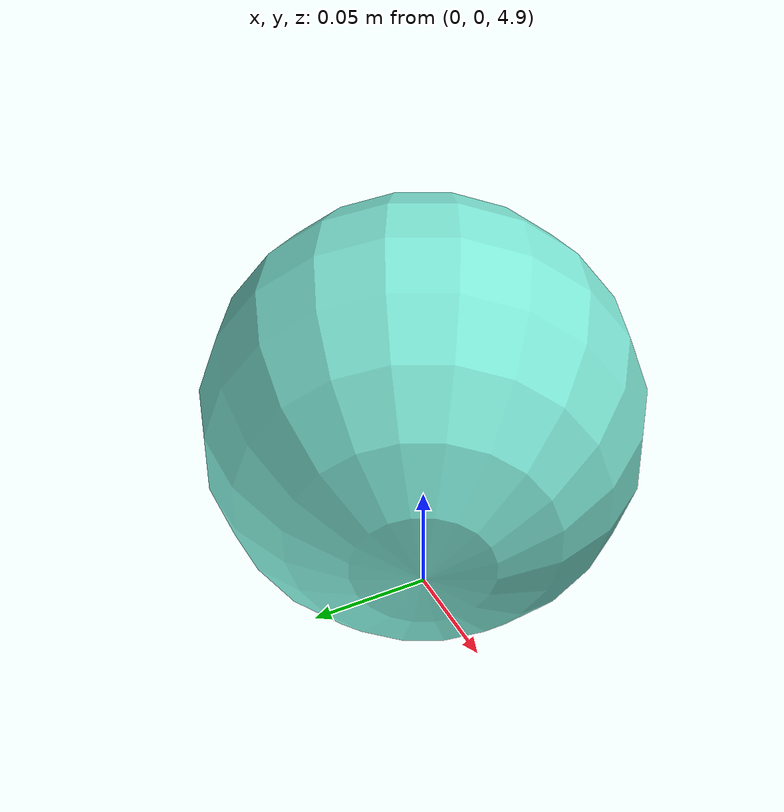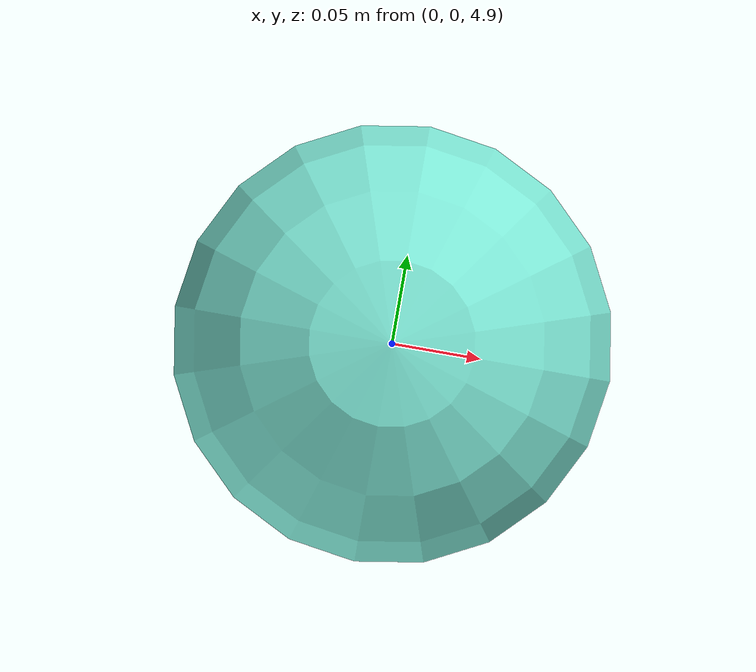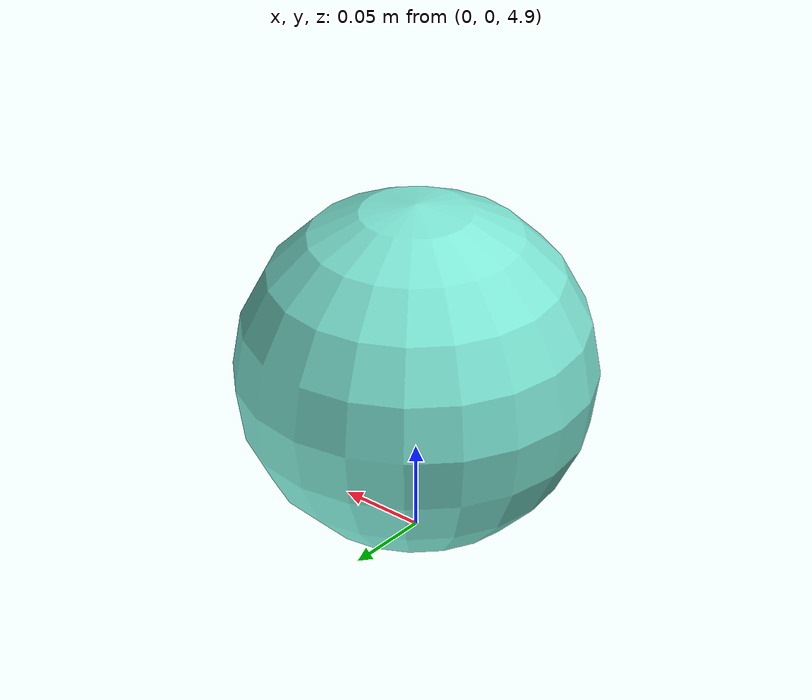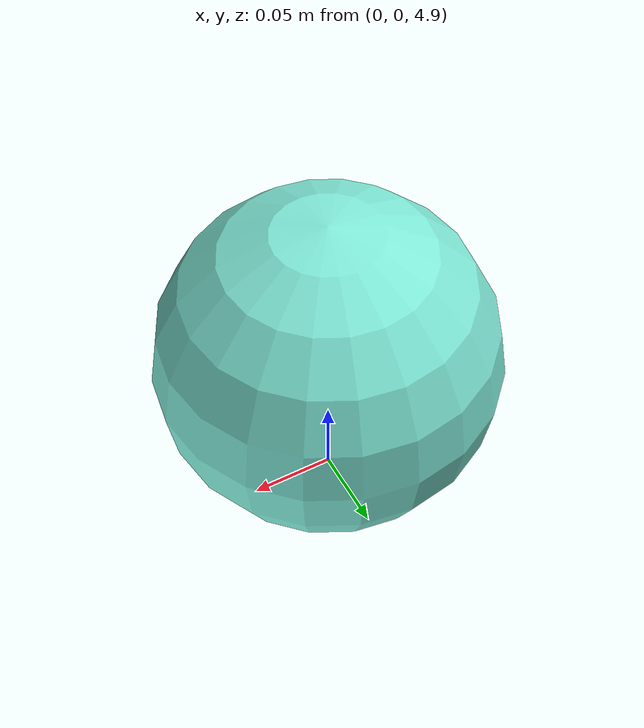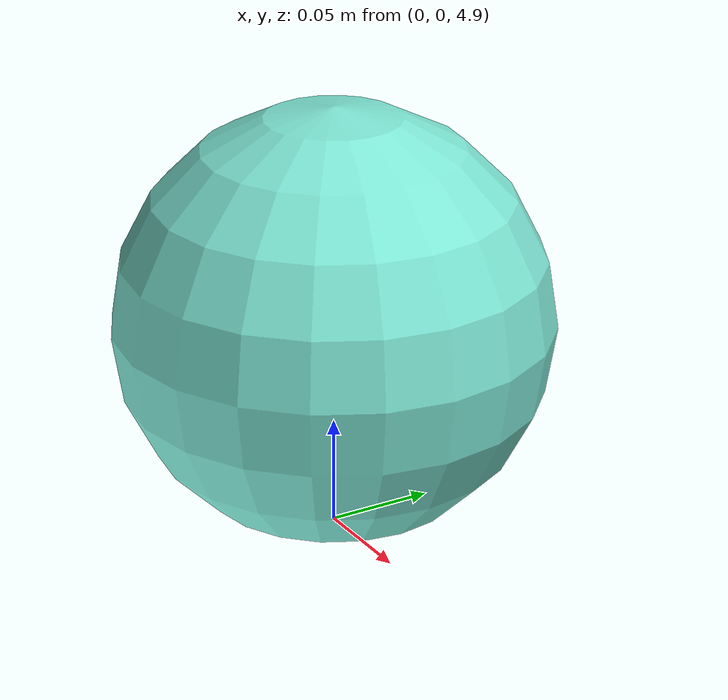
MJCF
<mujoco>
  <option gravity="0 0 -9.81"/>

  <asset>
    <!-- 배경: light gray (skybox) -->
    <texture type="skybox" builtin="gradient"
             rgb1="0.7 0.7 0.7"
             rgb2="0.7 0.7 0.7"
             width="256" height="256"/>

    <!-- 재질: 바닥은 연한 회색, 공은 구분 잘 되는 민트 -->
    <material name="mint" rgba="0.5 0.92 0.85 1"/>
    <material name="floor_light" rgba="0.88 0.88 0.88 1"/>
  </asset>

  <worldbody>
    <!-- 바닥 -->
    <geom type="plane" size="5 5 0.1" material="floor_light"/>

    <!-- 떨어지는 공: freejoint로 중력에 낙하, material=mint -->
    <body pos="0 0 5">
      <freejoint/>
      <geom type="sphere" size="0.1" material="mint"/>
    </body>
  </worldbody>
</mujoco>
